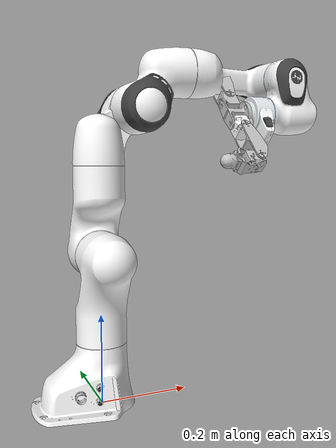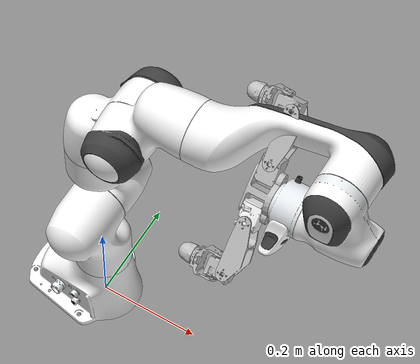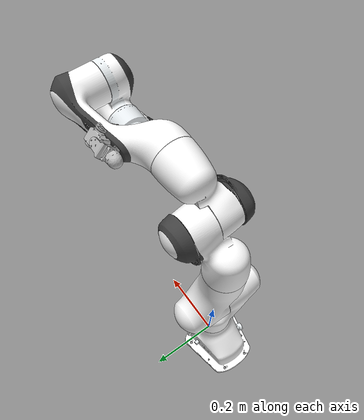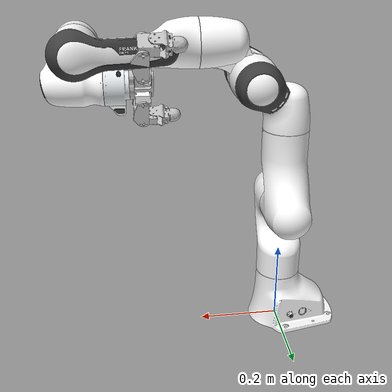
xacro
<?xml version="1.0"?>
<robot xmlns:xacro="http://www.ros.org/wiki/xacro" name="panda">
  <xacro:arg name="robot_name" default="panda"/>
  <xacro:arg name="load_gripper" default="true"/>
  <xacro:arg name="load_gazebo" default="false"/>
  <xacro:arg name="use_gazebo_control" default="false"/>
  <xacro:arg name="connected_to" default=""/> <!-- If using a different frame with ${connected_to} param, make sure 'world' frame exists in the TF tree -->

  <xacro:include filename="$(find franka_panda_description)/robots/panda_arm.xacro"/>

  <xacro:if value="$(arg load_gripper)">
    <xacro:include filename="$(find franka_panda_description)/robots/hand_screwgripper.xacro"/>
    <xacro:hand ns="panda" rpy="0 0 ${-pi/4}" connected_to="panda_link8"/>
  </xacro:if>

  <xacro:if value="$(arg load_gazebo)">
    <xacro:include filename="$(find franka_panda_description)/robots/panda.gazebo.xacro"/>
    <xacro:include filename="$(find franka_panda_description)/robots/panda.transmission.xacro"/>

    <xacro:panda_arm in_gazebo="true"  connected_to="$(arg connected_to)"/>
    <xacro:panda_gazebo robot_name="$(arg robot_name)" load_gripper="$(arg load_gripper)"/>
    <xacro:panda_transmission robot_name="$(arg robot_name)" load_gripper="$(arg load_gripper)" use_gazebo_control="$(arg use_gazebo_control)"/>
  </xacro:if>

  <xacro:unless value="$(arg load_gazebo)">
    <xacro:panda_arm />
  </xacro:unless>

</robot>

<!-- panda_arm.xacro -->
<robot xmlns:xacro="http://www.ros.org/wiki/xacro" name="panda">
  <xacro:macro name="panda_arm" params="arm_id:='panda' description_pkg:='franka_panda_description' connected_to:='' in_gazebo='false' xyz:='0 0 0' rpy:='0 0 0'">
    <!-- If using custom frame with ${connected_to} param, make sure 'world' frame exists in its TF tree -->
    <xacro:if value="${connected_to == ''}">
      <link name="world" />
      <xacro:property name="base_frame_name" value="world"/>
    </xacro:if>
    <xacro:unless value="${connected_to == ''}">
      <xacro:property name="base_frame_name" value="${connected_to}"/>
    </xacro:unless>
    <joint name="${arm_id}_to_${base_frame_name}" type="fixed">
      <parent link="${base_frame_name}"/>
      <child link="${arm_id}_link0"/>
      <origin rpy="${rpy}" xyz="${xyz}"/>
      <xacro:unless value="${in_gazebo == 'false'}">
        <dynamics damping="1.0"/>
      </xacro:unless>
    </joint>
    <link name="${arm_id}_link0">
      <visual>
        <geometry>
          <mesh filename="package://${description_pkg}/meshes/visual/link0.dae"/>
        </geometry>
      </visual>
      <collision>
        <geometry>
          <mesh filename="package://${description_pkg}/meshes/collision/link0.stl"/>
        </geometry>
      </collision>
      <xacro:unless value="${in_gazebo == 'false'}">
        <inertial>
          <origin xyz="0 0 0" rpy="0 0 0"/>
          <mass value="3.06"/>
          <inertia ixx="0.3" ixy="0.0" ixz="0.0" iyy="0.3" iyz="0.0" izz="0.3"/>
        </inertial>
      </xacro:unless>
    </link>
    <link name="${arm_id}_link1">
      <visual>
        <geometry>
          <mesh filename="package://${description_pkg}/meshes/visual/link1.dae"/>
        </geometry>
      </visual>
      <collision>
        <geometry>
          <mesh filename="package://${description_pkg}/meshes/collision/link1.stl"/>
        </geometry>
      </collision>
      <inertial>
        <origin xyz="3.875e-03 2.081e-03 -0.1750" rpy="0 0 0"/>
        <mass value="4.970684"/>
        <inertia ixx="7.0337e-01" ixy="-1.3900e-04" ixz="6.7720e-03" iyy="7.0661e-01" iyz="1.9169e-02" izz="9.1170e-03"/>
      </inertial>
    </link>
    <joint name="${arm_id}_joint1" type="revolute">
      <safety_controller k_position="100.0" k_velocity="40.0" soft_lower_limit="-2.8973" soft_upper_limit="2.8973"/>
      <origin rpy="0 0 0" xyz="0 0 0.333"/>
      <parent link="${arm_id}_link0"/>
      <child link="${arm_id}_link1"/>
      <axis xyz="0 0 1"/>
      <limit effort="87" lower="-2.8973" upper="2.8973" velocity="2.1750"/>
      <dynamics damping="10.0" friction="5.0"/>
    </joint>
    <link name="${arm_id}_link2">
      <visual>
        <geometry>
          <mesh filename="package://${description_pkg}/meshes/visual/link2.dae"/>
        </geometry>
      </visual>
      <collision>
        <geometry>
          <mesh filename="package://${description_pkg}/meshes/collision/link2.stl"/>
        </geometry>
      </collision>
      <inertial>
        <origin xyz="-3.141e-03 -2.872e-02 3.495e-03" rpy="0 0 0"/>
        <mass value="0.646926"/>
        <inertia ixx="7.9620e-03" ixy="-3.9250e-03" ixz="1.0254e-02" iyy="2.8110e-02" iyz="7.0400e-04" izz="2.5995e-02"/>
      </inertial>
    </link>
    <joint name="${arm_id}_joint2" type="revolute">
      <safety_controller k_position="100.0" k_velocity="40.0" soft_lower_limit="-1.7628" soft_upper_limit="1.7628"/>
      <origin rpy="${-pi/2} 0 0" xyz="0 0 0"/>
      <parent link="${arm_id}_link1"/>
      <child link="${arm_id}_link2"/>
      <axis xyz="0 0 1"/>
      <limit effort="87" lower="-1.7628" upper="1.7628" velocity="2.1750"/>
      <dynamics damping="5.0" friction="2.0"/>
    </joint>
    <link name="${arm_id}_link3">
      <visual>
        <geometry>
          <mesh filename="package://${description_pkg}/meshes/visual/link3.dae"/>
        </geometry>
      </visual>
      <collision>
        <geometry>
          <mesh filename="package://${description_pkg}/meshes/collision/link3.stl"/>
        </geometry>
      </collision>
      <inertial>
        <origin xyz="2.7518e-02 3.9252e-02 -6.6502e-02" rpy="0 0 0"/>
        <mass value="3.228604"/>
        <inertia ixx="3.7242e-02" ixy="-4.7610e-03" ixz="-1.1396e-02" iyy="3.6155e-02" iyz="-1.2805e-02" izz="1.0830e-02"/>
      </inertial>
    </link>
    <joint name="${arm_id}_joint3" type="revolute">
      <safety_controller k_position="100.0" k_velocity="40.0" soft_lower_limit="-2.8973" soft_upper_limit="2.8973"/>
      <origin rpy="${pi/2} 0 0" xyz="0 -0.316 0"/>
      <parent link="${arm_id}_link2"/>
      <child link="${arm_id}_link3"/>
      <axis xyz="0 0 1"/>
      <limit effort="87" lower="-2.8973" upper="2.8973" velocity="2.1750"/>
      <dynamics damping="5.0" friction="2.0"/>
    </joint>
    <link name="${arm_id}_link4">
      <visual>
        <geometry>
          <mesh filename="package://${description_pkg}/meshes/visual/link4.dae"/>
        </geometry>
      </visual>
      <collision>
        <geometry>
          <mesh filename="package://${description_pkg}/meshes/collision/link4.stl"/>
        </geometry>
      </collision>
      <inertial>
        <origin xyz="-5.317e-02 1.04419e-01 2.7454e-02" rpy="0 0 0"/>
        <mass value="3.587895"/>
        <inertia ixx="2.5853e-02" ixy="7.7960e-03" ixz="-1.3320e-03" iyy="1.9552e-02" iyz="8.6410e-03" izz="2.8323e-02"/>
      </inertial>
    </link>
    <joint name="${arm_id}_joint4" type="revolute">
      <safety_controller k_position="100.0" k_velocity="40.0" soft_lower_limit="-3.0718" soft_upper_limit="-0.0698"/>
      <origin rpy="${pi/2} 0 0" xyz="0.0825 0 0"/>
      <parent link="${arm_id}_link3"/>
      <child link="${arm_id}_link4"/>
      <axis xyz="0 0 1"/>
      <limit effort="87" lower="-3.0718" upper="-0.0698" velocity="2.1750"/>
      <dynamics damping="1.0" friction="0.5"/>
    </joint>
    <link name="${arm_id}_link5">
      <visual>
        <geometry>
          <mesh filename="package://${description_pkg}/meshes/visual/link5.dae"/>
        </geometry>
      </visual>
      <collision>
        <geometry>
          <mesh filename="package://${description_pkg}/meshes/collision/link5.stl"/>
        </geometry>
      </collision>
      <inertial>
        <origin xyz="-1.1953e-02 4.1065e-02 -3.8437e-02" rpy="0 0 0"/>
        <mass value="1.225946"/>
        <inertia ixx="3.5549e-02" ixy="-2.1170e-03" ixz="-4.0370e-03" iyy="2.9474e-02" iyz="2.2900e-04" izz="8.6270e-03"/>
      </inertial>
    </link>
    <joint name="${arm_id}_joint5" type="revolute">
      <safety_controller k_position="100.0" k_velocity="40.0" soft_lower_limit="-2.8973" soft_upper_limit="2.8973"/>
      <origin rpy="${-pi/2} 0 0" xyz="-0.0825 0.384 0"/>
      <parent link="${arm_id}_link4"/>
      <child link="${arm_id}_link5"/>
      <axis xyz="0 0 1"/>
      <limit effort="12" lower="-2.8973" upper="2.8973" velocity="2.6100"/>
      <dynamics damping="2.0" friction="1.0"/>
    </joint>
    <link name="${arm_id}_link6">
      <visual>
        <geometry>
          <mesh filename="package://${description_pkg}/meshes/visual/link6.dae"/>
        </geometry>
      </visual>
      <collision>
        <geometry>
          <mesh filename="package://${description_pkg}/meshes/collision/link6.stl"/>
        </geometry>
      </collision>
      <inertial>
        <origin xyz="6.0149e-02 -1.4117e-02 -1.0517e-02" rpy="0 0 0"/>
        <mass value="1.666555"/>
        <inertia ixx="1.9640e-03" ixy="1.0900e-04" ixz="-1.1580e-03" iyy="4.3540e-03" iyz="3.4100e-04" izz="5.4330e-03"/>
      </inertial>
    </link>
    <joint name="${arm_id}_joint6" type="revolute">
      <safety_controller k_position="100.0" k_velocity="40.0" soft_lower_limit="-0.0175" soft_upper_limit="3.7525"/>
      <origin rpy="${pi/2} 0 0" xyz="0 0 0"/>
      <parent link="${arm_id}_link5"/>
      <child link="${arm_id}_link6"/>
      <axis xyz="0 0 1"/>
      <limit effort="12" lower="-0.0175" upper="3.7525" velocity="2.6100"/>
      <dynamics damping="1.0" friction="0.5"/>
    </joint>
    <link name="${arm_id}_link7">
      <visual>
        <geometry>
          <mesh filename="package://${description_pkg}/meshes/visual/link7.dae"/>
        </geometry>
      </visual>
      <collision>
        <geometry>
          <mesh filename="package://${description_pkg}/meshes/collision/link7.stl"/>
        </geometry>
      </collision>
      <inertial>
        <origin xyz="1.0517e-02 -4.252e-03 6.1597e-02" rpy="0 0 0"/>
        <mass value="7.35522e-01"/>
        <inertia ixx="1.2516e-02" ixy="-4.2800e-04" ixz="-1.1960e-03" iyy="1.0027e-02" iyz="-7.4100e-04" izz="4.8150e-03"/>
      </inertial>
    </link>
    <joint name="${arm_id}_joint7" type="revolute">
      <safety_controller k_position="100.0" k_velocity="40.0" soft_lower_limit="-2.8973" soft_upper_limit="2.8973"/>
      <origin rpy="${pi/2} 0 0" xyz="0.088 0 0"/>
      <parent link="${arm_id}_link6"/>
      <child link="${arm_id}_link7"/>
      <axis xyz="0 0 1"/>
      <limit effort="12" lower="-2.8973" upper="2.8973" velocity="2.6100"/>
      <dynamics damping="1.0" friction="0.5"/>
    </joint>
    <link name="${arm_id}_link8">
      <inertial>
        <origin xyz="0 0 0" rpy="0 0 0"/>
        <mass value="0.0"/>
        <inertia ixx="0.001" ixy="0.0" ixz="0.0" iyy="0.001" iyz="0.0" izz="0.001"/>
      </inertial>
    </link>
    <joint name="${arm_id}_joint8" type="fixed">
    <origin rpy="0 0 0" xyz="0 0 0.107"/>
      <parent link="${arm_id}_link7"/>
      <child link="${arm_id}_link8"/>
      <axis xyz="0 0 0"/>
    </joint>
  </xacro:macro>
</robot>

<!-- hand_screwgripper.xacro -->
<robot xmlns:xacro="http://www.ros.org/wiki/xacro" name="hand">
  <xacro:macro name="hand" params="connected_to:='' ns:='' rpy:='0 0 0' xyz:='0 0 0' ">
    <xacro:unless value="${connected_to == ''}">
      <joint name="${ns}_hand_joint" type="fixed">
        <parent link="${connected_to}"/>
        <child link="${ns}_hand"/>
        <origin xyz="${xyz}" rpy="${rpy}"/>
      </joint>
    </xacro:unless>
  <link
    name="${ns}_hand">
    <inertial>
      <origin
        xyz="0 -6.93889390390723E-18 0.0150172297115083"
        rpy="0 0 0" />
      <mass
        value="0.0547007330603109" />
      <inertia
        ixx="3.82502607446515E-05"
        ixy="5.63004985316599E-13"
        ixz="1.38024178340574E-21"
        iyy="2.55682822465902E-05"
        iyz="-2.99181481392226E-21"
        izz="3.01786195512601E-05" />
    </inertial>
    <visual>
      <origin
        xyz="0 0 0"
        rpy="0 0 0" />
      <geometry>
        <mesh
          filename="package://urdf_gripper1/meshes/Link_1.stl" />
      </geometry>
      <material
        name="">
        <color
          rgba="0.752941176470588 0.752941176470588 0.752941176470588 1" />
      </material>
    </visual>
    <collision>
      <origin
        xyz="0 0 0"
        rpy="0 0 0" />
      <geometry>
        <mesh
          filename="package://urdf_gripper1/meshes/Link_1.stl" />
      </geometry>
    </collision>
  </link>
  <link
    name="Link_2">
    <inertial>
      <origin
        xyz="0.000133911513531482 0.0308660885322123 0.0108576264680072"
        rpy="0 0 0" />
      <mass value="0.098997" />
        <inertia ixx="0.0000276300" ixy="0.0000000418" ixz="0.0000005145" iyy="0.0000204300" iyz="-0.0000000421" izz="0.0000276300"/>
    </inertial>
    <visual>
      <origin
        xyz="0 0 0"
        rpy="0 0 0" />
      <geometry>
        <mesh
          filename="package://urdf_gripper1/meshes/Link_2.stl" />
      </geometry>
      <material
        name="">
        <color
          rgba="0.752941176470588 0.752941176470588 0.752941176470588 1" />
      </material>
    </visual>
    <collision>
      <origin
        xyz="0 0 0"
        rpy="0 0 0" />
      <geometry>
        <mesh
          filename="package://urdf_gripper1/meshes/Link_2.stl" scale="0.6 0.6 0.6" />
      </geometry>
    </collision>
  </link>
  <joint
    name="Joint_1"
    type="continuous">
    <origin
      xyz="0 -0.031 0.029"
      rpy="0 0 0" />
    <limit effort="0.35" lower="-0.524" upper="0.524" velocity="6.283"/>
    <parent
      link="${ns}_hand" />
    <child
      link="Link_2" />
    <axis
      xyz="0 0 1" />
  </joint>
  <link
    name="Link_3">
    <inertial>
      <origin
        xyz="-6.6959E-10 -0.047312 -0.003167"
        rpy="0 0 0" />
      <mass
        value="0.035188" />
      <inertia
        ixx="3.0041E-05"
        ixy="3.5933E-13"
        ixz="2.5652E-13"
        iyy="1.7697E-05"
        iyz="-2.3365E-07"
        izz="4.1102E-05" />
    </inertial>
    <visual>
      <origin
        xyz="0 0 0"
        rpy="0 0 0" />
      <geometry>
        <mesh
          filename="package://urdf_gripper1/meshes/Link_3.stl" />
      </geometry>
      <material
        name="">
        <color
          rgba="0.75294 0.75294 0.75294 1" />
      </material>
    </visual>
    <collision>
      <origin
        xyz="0 0 0"
        rpy="0 0 0" />
      <geometry>
        <mesh
          filename="package://urdf_gripper1/meshes/Link_3.stl" />
      </geometry>
    </collision>
  </link>
  <joint
    name="Joint_2"
    type="continuous">
    <origin
      xyz="0 -0.024 0"
      rpy="0 0 0" />
    <limit effort="0.35" lower="-1.57" upper="0.0" velocity="6.283"/>
    <parent
      link="Link_2" />
    <child
      link="Link_3" />
    <axis
      xyz="1 0 0" />
  </joint>
  <link
    name="Link_4">
    <inertial>
      <origin
        xyz="0.00013391 0.15039 0.010104"
        rpy="0 0 0" />
      <mass value="0.098997" />
        <inertia ixx="0.0000276300" ixy="0.0000000418" ixz="0.0000005145" iyy="0.0000204300" iyz="-0.0000000421" izz="0.0000276300"/>
    </inertial>
    <visual>
      <origin
        xyz="0 0 0"
        rpy="0 0 0" />
      <geometry>
        <mesh
          filename="package://urdf_gripper1/meshes/Link_4.stl" scale="0.95 0.95 0.95"/>
      </geometry>
      <material
        name="">
        <color
          rgba="0.75294 0.75294 0.75294 1" />
      </material>
    </visual>
    <collision>
      <origin
        xyz="0 0 0"
        rpy="0 0 0" />
      <geometry>
        <mesh
          filename="package://urdf_gripper1/meshes/Link_4.stl" scale="0.6 0.6 0.6" />
      </geometry>
    </collision>
  </link>
  <joint
    name="Joint_3"
    type="continuous">
    <origin
      xyz="0 -0.095522 0.000754"
      rpy="0 0 0" />
    <limit effort="0.35" lower="0.6" upper="2.2" velocity="6.283"/>
    <parent
      link="Link_3" />
    <child
      link="Link_4" />
    <axis
      xyz="1 0 0" />
  </joint>
  <link
    name="Grip_1">
    <inertial>
      <origin
        xyz="-1.87532538448026E-05 -1.46755248142255E-05 0.0353004822904477"
        rpy="0 0 0" />
      <mass
        value="0.0344208838298377" />
      <inertia
        ixx="7.7154399626129E-06"
        ixy="2.6075628479324E-10"
        ixz="1.58733850084192E-09"
        iyy="4.43641994241611E-06"
        iyz="1.64596780856448E-10"
        izz="7.87085677073128E-06" />
    </inertial>
    <visual>
      <origin
        xyz="0 0 0"
        rpy="0 0 0" />
      <geometry>
        <mesh
          filename="package://urdf_gripper1/meshes/Grip_1.stl" />
      </geometry>
      <material
        name="">
        <color
          rgba="0.752941176470588 0.752941176470588 0.752941176470588 1" />
      </material>
    </visual>
    <collision>
      <origin
        xyz="0 0 0"
        rpy="0 0 0" />
      <geometry>
        <mesh
          filename="package://urdf_gripper1/meshes/Grip_1.stl" />
      </geometry>
    </collision>
  </link>
  <joint
    name="Joint_4"
    type="continuous">
    <origin
      xyz="0 0 0.024"
      rpy="0 0 0" />
    <limit effort="0.35" lower="-1.22" upper="1.22" velocity="6.283"/>
    <parent
      link="Link_4" />
    <child
      link="Grip_1" />
    <axis
      xyz="0 1 0" />
  </joint>
  <link
    name="Link_5">
    <inertial>
      <origin
        xyz="0 0 0"
        rpy="0 0 0" />
      <mass value="0.098997" />
        <inertia ixx="0.0000276300" ixy="0.0000000418" ixz="0.0000005145" iyy="0.0000204300" iyz="-0.0000000421" izz="0.0000276300"/>
    </inertial>
    <visual>
      <origin
        xyz="0 0 0"
        rpy="0 0 0" />
      <geometry>
        <mesh
          filename="package://urdf_gripper1/meshes/Link_5.stl" />
      </geometry>
      <material
        name="">
        <color
          rgba="1 1 1 1" />
      </material>
    </visual>
    <collision>
      <origin
        xyz="0 0 0"
        rpy="0 0 0" />
      <geometry>
        <mesh
          filename="package://urdf_gripper1/meshes/Link_5.stl" scale="0.6 0.6 0.6" />
      </geometry>
    </collision>
  </link>
  <joint
    name="Joint_5"
    type="continuous">
    <origin
      xyz="0 0.031 0.029"
      rpy="0 0 0" />
    <limit effort="0.35" lower="-0.524" upper="0.524" velocity="6.283"/>
    <parent
      link="${ns}_hand" />
    <child
      link="Link_5" />
    <axis
      xyz="0 0 1" />
  </joint>
  <link
    name="Link_6">
    <inertial>
      <origin
        xyz="6.69590480284477E-10 0.047312259543009 -0.00316696601621572"
        rpy="0 0 0" />
      <mass
        value="0.0351877222430874" />
      <inertia
        ixx="3.00405223867073E-05"
        ixy="3.59327904026506E-13"
        ixz="-2.56522219181268E-13"
        iyy="1.76968982571648E-05"
        iyz="2.33648286999841E-07"
        izz="4.11020098914542E-05" />
    </inertial>
    <visual>
      <origin
        xyz="0 0 0"
        rpy="0 0 0" />
      <geometry>
        <mesh
          filename="package://urdf_gripper1/meshes/Link_6.stl" />
      </geometry>
      <material
        name="">
        <color
          rgba="0.752941176470588 0.752941176470588 0.752941176470588 1" />
      </material>
    </visual>
    <collision>
      <origin
        xyz="0 0 0"
        rpy="0 0 0" />
      <geometry>
        <mesh
          filename="package://urdf_gripper1/meshes/Link_6.stl" />
      </geometry>
    </collision>
  </link>
  <joint
    name="Joint_6"
    type="continuous">
    <origin
      xyz="0 0.024 0"
      rpy="0 0 0" />
    <limit effort="0.35" lower="0.0" upper="1.57" velocity="6.283"/>
    <parent
      link="Link_5" />
    <child
      link="Link_6" />
    <axis
      xyz="1 0 0" />
  </joint>
  <link
    name="Link_7">
    <inertial>
      <origin
        xyz="0.000133910925717962 -0.150655801871864 0.0101036224635462"
        rpy="0 0 0" />
      <mass value="0.098997" />
        <inertia ixx="0.0000276300" ixy="0.0000000418" ixz="0.0000005145" iyy="0.0000204300" iyz="-0.0000000421" izz="0.0000276300"/>
    </inertial>
    <visual>
      <origin
        xyz="0 0 0"
        rpy="0 0 0" />
      <geometry>
        <mesh
          filename="package://urdf_gripper1/meshes/Link_7.stl" scale="0.95 0.95 0.95" />
      </geometry>
      <material
        name="">
        <color
          rgba="0.752941176470588 0.752941176470588 0.752941176470588 1" />
      </material>
    </visual>
    <collision>
      <origin
        xyz="0 0 0"
        rpy="0 0 0" />
      <geometry>
        <mesh
          filename="package://urdf_gripper1/meshes/Link_7.stl" scale="0.6 0.6 0.6" />
      </geometry>
    </collision>
  </link>
  <joint
    name="Joint_7"
    type="continuous">
    <origin
      xyz="0 0.095522 0.000754"
      rpy="0 0 0" />
    <limit effort="0.35" lower="-2.2" upper="-0.6" velocity="6.283"/>
    <parent
      link="Link_6" />
    <child
      link="Link_7" />
    <axis
      xyz="1 0 0" />
  </joint>
  <link
    name="Grip_2">
    <inertial>
      <origin
        xyz="1.87532538436924E-05 1.46755248140451E-05 0.0363332648225437"
        rpy="0 0 0" />
      <mass
        value="0.0344208838298375" />
      <inertia
        ixx="7.71543996261288E-06"
        ixy="2.60756284790869E-10"
        ixz="-1.58733850085364E-09"
        iyy="4.43641994241609E-06"
        iyz="-1.64596780858671E-10"
        izz="7.87085677073125E-06" />
    </inertial>
    <visual>
      <origin
        xyz="0 0 0"
        rpy="0 0 0" />
      <geometry>
        <mesh
          filename="package://urdf_gripper1/meshes/Grip_2.stl" />
      </geometry>
      <material
        name="">
        <color
          rgba="0.752941176470588 0.752941176470588 0.752941176470588 1" />
      </material>
    </visual>
    <collision>
      <origin
        xyz="0 0 0"
        rpy="0 0 0" />
      <geometry>
        <mesh
          filename="package://urdf_gripper1/meshes/Grip_2.stl" />
      </geometry>
    </collision>
  </link>
  <joint
    name="Joint_8"
    type="continuous">
    <origin
      xyz="0 0 0.024"
      rpy="0 0 0" />
    <limit effort="0.35" lower="-1.22" upper="1.22" velocity="6.283"/>
    <parent
      link="Link_7" />
    <child
      link="Grip_2" />
    <axis
      xyz="0 1 0" />
  </joint>
  </xacro:macro>
</robot>
